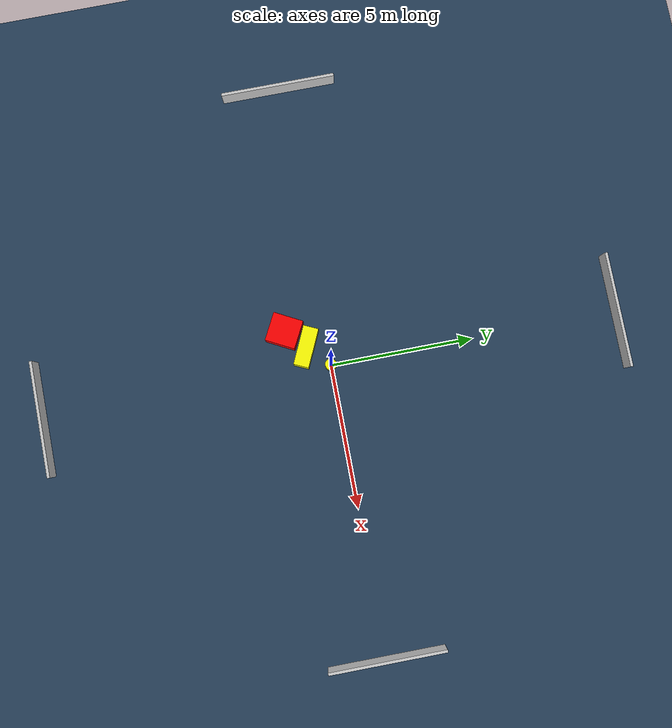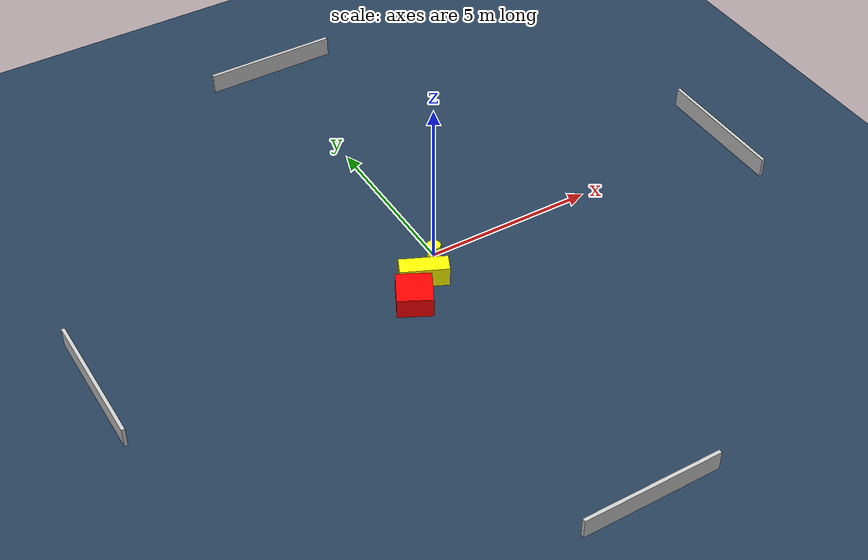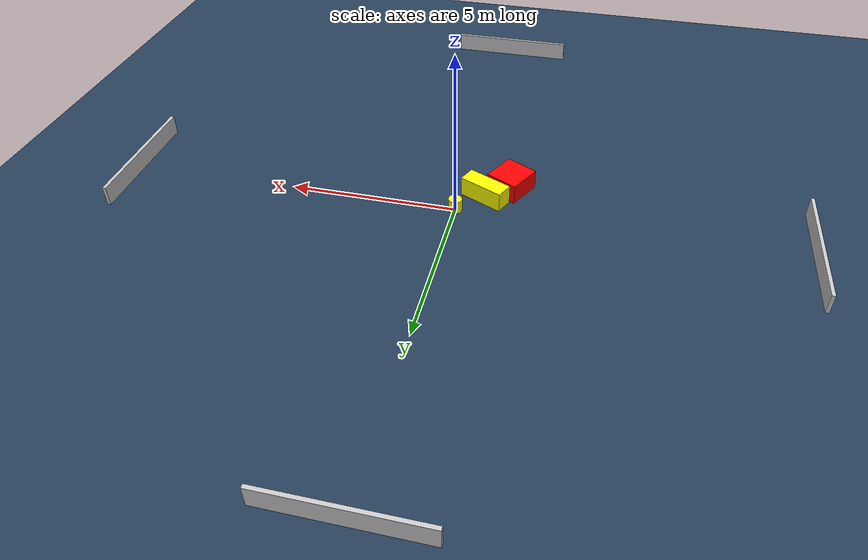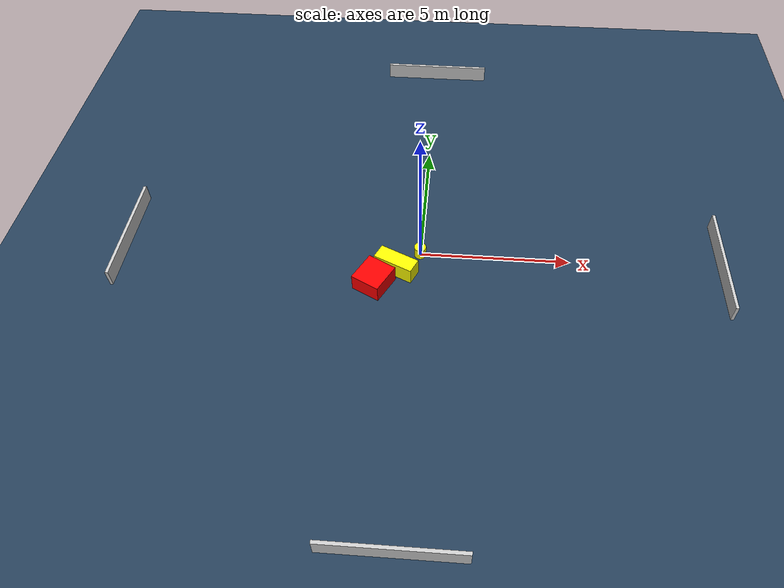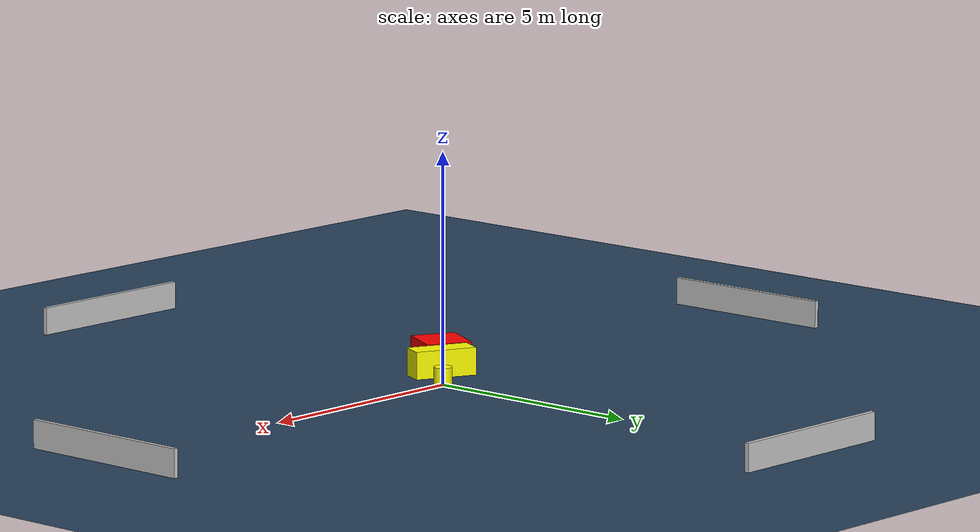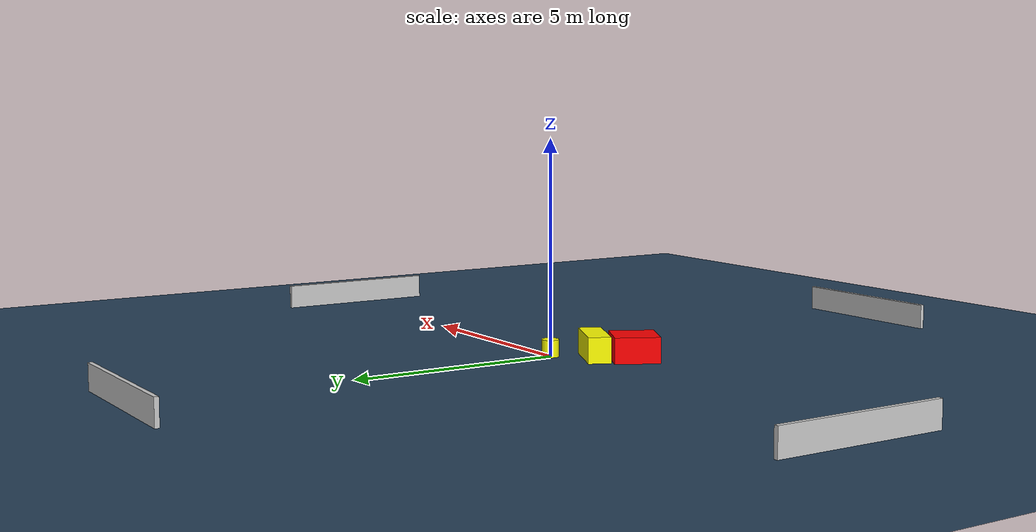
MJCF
<?xml version="1.0" ?>
<mujoco model="generated_environment">
  <option timestep="0.01" integrator="RK4" cone="elliptic"/>
  <default>
    <geom density="1"/>
  </default>
  <asset>
    <texture builtin="gradient" height="3072" name="skybox" rgb1="0.3 0.5 0.7" rgb2="0 0 0" type="skybox" width="512"/>
    <texture builtin="checker" height="300" name="groundplane" rgb1="0.2 0.3 0.4" rgb2="0.1 0.2 0.3" type="2d" width="300"/>
    <material name="groundplane" reflectance="0.2" texrepeat="5 5" texture="groundplane"/>
  </asset>
  <worldbody>
    <light dir="0 0 -1" directional="true" pos="0 0 1.5"/>
    <geom condim="3" friction="0.5 0.005 0.001" material="groundplane" name="floor" pos="0 0 0" size="0 0 0.05" type="plane"/>
    <body name="walls">
      <geom name="wall_1" condim="4" pos="-10.0 0.0 0.3" rgba="0.800000011920929 0.800000011920929 0.800000011920929 1.0" size="0.05 2.0 0.3" type="box"/>
      <geom name="wall_2" condim="4" pos="10.0 0.0 0.3" rgba="0.800000011920929 0.800000011920929 0.800000011920929 1.0" size="0.05 2.0 0.3" type="box"/>
      <geom name="wall_3" condim="4" pos="0.0 -10.0 0.3" rgba="0.800000011920929 0.800000011920929 0.800000011920929 1.0" size="2.0 0.05 0.3" type="box"/>
      <geom name="wall_4" condim="4" pos="0.0 10.0 0.3" rgba="0.800000011920929 0.800000011920929 0.800000011920929 1.0" size="2.0 0.05 0.3" type="box"/>
    </body>
    <body name="robot">
      <joint name="joint_x" type="slide" pos="0 0 0" axis="1 0 0"/>
      <joint name="joint_y" type="slide" pos="0 0 0" axis="0 1 0"/>
      <geom name="robot" type="cylinder" pos="0.0 0.0 0.2" size="0.2 0.2 0.0" mass="5.0" friction="1.0 0.005 0.0001" condim="4" rgba="1.0 1.0 0.0 1.0"/>
    </body>
    <body name="obstacle_1_movable">
      <geom name="obstacle_1_movable" condim="4" pos="-0.7409102535969028 -0.7211884253071873 0.3" euler="0 0 65.23945270640885" friction="0.0 0.005 0.001" rgba="1.0 1.0 0.0 1.0" size="0.26418016000125305 0.6871107476331331 0.3" type="box" mass="0.1"/>
      <joint type="free"/>
    </body>
    <body name="obstacle_2_static">
      <geom name="obstacle_2_static" condim="4" pos="-1.4192462614236543 -1.3544133452326468 0.3" euler="0 0 152.28342438769354" friction="0.0 0.005 0.001" rgba="1.0 0.0 0.0 1.0" size="0.5000222569640904 0.5248055549030293 0.3" type="box"/>
    </body>
  </worldbody>
  <actuator>
    <motor name="actuator_x" joint="joint_x" gear="1" ctrlrange="-1 1"/>
    <motor name="actuator_y" joint="joint_y" gear="1" ctrlrange="-1 1"/>
  </actuator>
</mujoco>
